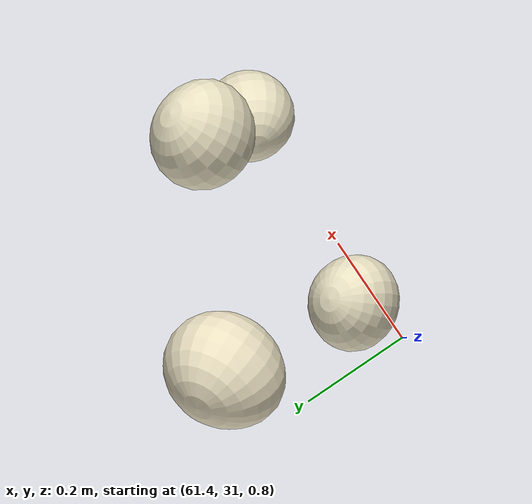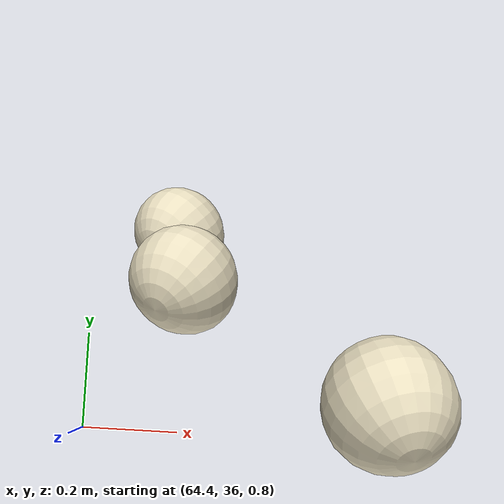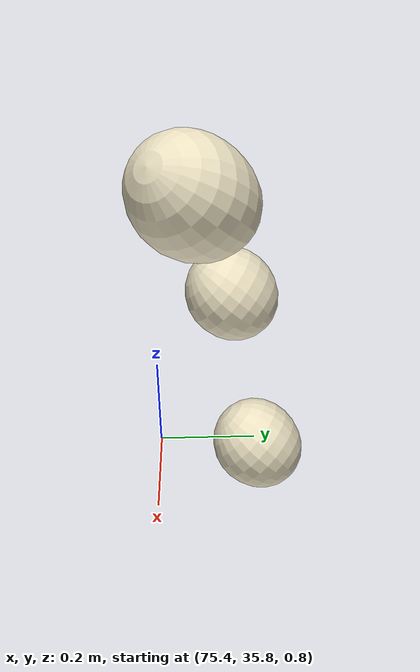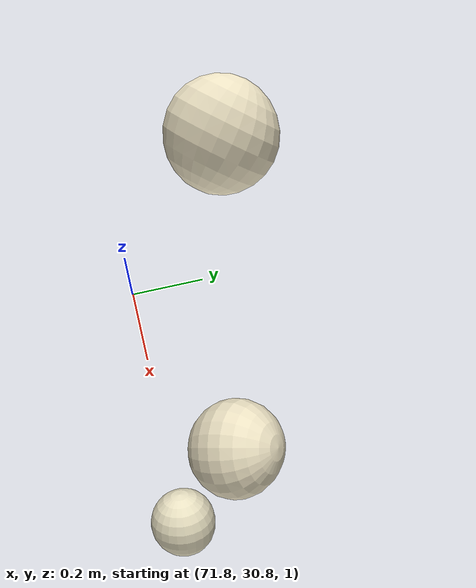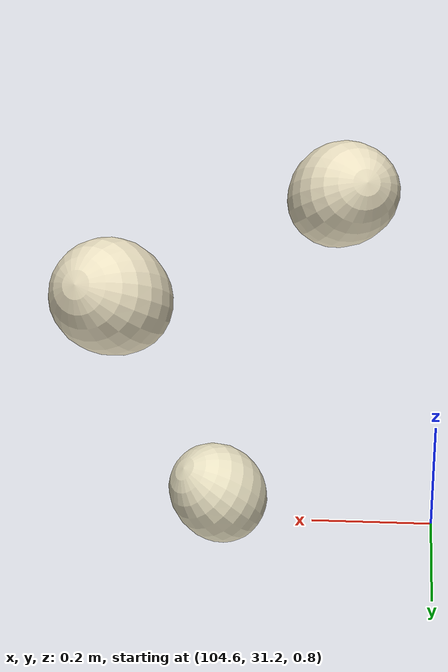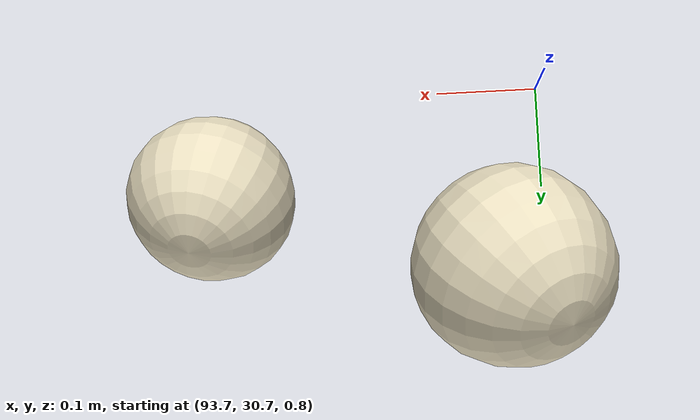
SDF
<sdf version="1.6">
 <world name="orchard">
  <physics name="fast_physics" type="dart">
   <max_step_size>0.005</max_step_size>
   <real_time_factor>1.0</real_time_factor>
  </physics>
  <plugin filename="ignition-gazebo-physics-system" name="ignition::gazebo::systems::Physics"/>
  <plugin filename="ignition-gazebo-user-commands-system" name="ignition::gazebo::systems::UserCommands"/>
  <plugin filename="ignition-gazebo-scene-broadcaster-system" name="ignition::gazebo::systems::SceneBroadcaster"/>
  <plugin filename="ignition-gazebo-sensors-system" name="ignition::gazebo::systems::Sensors">
   <render_engine>ogre2</render_engine>
  </plugin>
  <plugin filename="ignition-gazebo-imu-system" name="ignition::gazebo::systems::Imu"/>
  <scene><ambient>0.4 0.4 0.4 1</ambient><background>0.7 0.85 1.0 1</background><shadows>true</shadows></scene>
  <light type="directional" name="sun">
   <pose>0 0 10 0 0 0</pose>
   <diffuse>0.9 0.9 0.85 1</diffuse>
   <specular>0.2 0.2 0.2 1</specular>
   <direction>-0.4 -0.3 -0.85</direction>
  </light>
  <model name="ground_plane">
   <static>true</static>
   <link name="link">
    <collision name="collision">
     <geometry><plane><normal>0 0 1</normal><size>500 500</size></plane></geometry>
     <surface><friction><ode><mu>100</mu><mu2>50</mu2></ode></friction></surface>
    </collision>
   </link>
  </model>
  <model name="cotton_pick_A_01">
   <static>true</static>
   <pose>61.8682 31.0094 0.9468 0 0 0</pose>
   <link name="cotton_pick_A_01_link">
    <visual name="visual">
     <geometry>
      <mesh><uri>model://cotton_pick_A_01/meshes/cotton_pick_A_01.dae</uri><scale>4.0 4.0 4.0</scale></mesh>
     </geometry>
    </visual>
   </link>
  </model>
  <model name="cotton_pick_A_02">
   <static>true</static>
   <pose>61.5010 31.0447 1.0983 0 0 0</pose>
   <link name="cotton_pick_A_02_link">
    <visual name="visual">
     <geometry>
      <mesh><uri>model://cotton_pick_A_02/meshes/cotton_pick_A_02.dae</uri><scale>4.0 4.0 4.0</scale></mesh>
     </geometry>
    </visual>
   </link>
  </model>
  <model name="cotton_pick_A_03">
   <static>true</static>
   <pose>61.8671 31.1012 1.3447 0 0 0</pose>
   <link name="cotton_pick_A_03_link">
    <visual name="visual">
     <geometry>
      <mesh><uri>model://cotton_pick_A_03/meshes/cotton_pick_A_03.dae</uri><scale>4.0 4.0 4.0</scale></mesh>
     </geometry>
    </visual>
   </link>
  </model>
  <model name="cotton_pick_A_04">
   <static>true</static>
   <pose>61.5315 31.2864 1.6349 0 0 0</pose>
   <link name="cotton_pick_A_04_link">
    <visual name="visual">
     <geometry>
      <mesh><uri>model://cotton_pick_A_04/meshes/cotton_pick_A_04.dae</uri><scale>4.0 4.0 4.0</scale></mesh>
     </geometry>
    </visual>
   </link>
  </model>
  <model name="cotton_pick_A_05">
   <static>true</static>
   <pose>94.0297 30.8042 0.8508 0 0 0</pose>
   <link name="cotton_pick_A_05_link">
    <visual name="visual">
     <geometry>
      <mesh><uri>model://cotton_pick_A_05/meshes/cotton_pick_A_05.dae</uri><scale>4.0 4.0 4.0</scale></mesh>
     </geometry>
    </visual>
   </link>
  </model>
  <model name="cotton_pick_A_06">
   <static>true</static>
   <pose>93.7610 30.9137 1.1155 0 0 0</pose>
   <link name="cotton_pick_A_06_link">
    <visual name="visual">
     <geometry>
      <mesh><uri>model://cotton_pick_A_06/meshes/cotton_pick_A_06.dae</uri><scale>4.0 4.0 4.0</scale></mesh>
     </geometry>
    </visual>
   </link>
  </model>
  <model name="cotton_pick_A_10">
   <static>true</static>
   <pose>64.5852 36.4121 0.9313 0 0 0</pose>
   <link name="cotton_pick_A_10_link">
    <visual name="visual">
     <geometry>
      <mesh><uri>model://cotton_pick_A_10/meshes/cotton_pick_A_10.dae</uri><scale>4.0 4.0 4.0</scale></mesh>
     </geometry>
    </visual>
   </link>
  </model>
  <model name="cotton_pick_A_12">
   <static>true</static>
   <pose>64.6229 36.2755 1.4048 0 0 0</pose>
   <link name="cotton_pick_A_12_link">
    <visual name="visual">
     <geometry>
      <mesh><uri>model://cotton_pick_A_12/meshes/cotton_pick_A_12.dae</uri><scale>4.0 4.0 4.0</scale></mesh>
     </geometry>
    </visual>
   </link>
  </model>
  <model name="cotton_pick_A_13">
   <static>true</static>
   <pose>64.8895 36.1139 1.7274 0 0 0</pose>
   <link name="cotton_pick_A_13_link">
    <visual name="visual">
     <geometry>
      <mesh><uri>model://cotton_pick_A_13/meshes/cotton_pick_A_13.dae</uri><scale>4.0 4.0 4.0</scale></mesh>
     </geometry>
    </visual>
   </link>
  </model>
  <model name="cotton_pick_A_16">
   <static>true</static>
   <pose>97.0977 35.9298 1.4068 0 0 0</pose>
   <link name="cotton_pick_A_16_link">
    <visual name="visual">
     <geometry>
      <mesh><uri>model://cotton_pick_A_16/meshes/cotton_pick_A_16.dae</uri><scale>4.0 4.0 4.0</scale></mesh>
     </geometry>
    </visual>
   </link>
  </model>
  <model name="cotton_pick_A_17">
   <static>true</static>
   <pose>97.4213 35.8617 1.6940 0 0 0</pose>
   <link name="cotton_pick_A_17_link">
    <visual name="visual">
     <geometry>
      <mesh><uri>model://cotton_pick_A_17/meshes/cotton_pick_A_17.dae</uri><scale>4.0 4.0 4.0</scale></mesh>
     </geometry>
    </visual>
   </link>
  </model>
  <model name="cotton_pick_B_01">
   <static>true</static>
   <pose>72.4371 30.7985 1.0064 0 0 0</pose>
   <link name="cotton_pick_B_01_link">
    <visual name="visual">
     <geometry>
      <mesh><uri>model://cotton_pick_B_01/meshes/cotton_pick_B_01.dae</uri><scale>4.0 4.0 4.0</scale></mesh>
     </geometry>
    </visual>
   </link>
  </model>
  <model name="cotton_pick_B_02">
   <static>true</static>
   <pose>72.3833 30.9198 1.4603 0 0 0</pose>
   <link name="cotton_pick_B_02_link">
    <visual name="visual">
     <geometry>
      <mesh><uri>model://cotton_pick_B_02/meshes/cotton_pick_B_02.dae</uri><scale>4.0 4.0 4.0</scale></mesh>
     </geometry>
    </visual>
   </link>
  </model>
  <model name="cotton_pick_B_03">
   <static>true</static>
   <pose>71.9506 30.9907 1.7740 0 0 0</pose>
   <link name="cotton_pick_B_03_link">
    <visual name="visual">
     <geometry>
      <mesh><uri>model://cotton_pick_B_03/meshes/cotton_pick_B_03.dae</uri><scale>4.0 4.0 4.0</scale></mesh>
     </geometry>
    </visual>
   </link>
  </model>
  <model name="cotton_pick_B_04">
   <static>true</static>
   <pose>104.9553 31.2475 0.8917 0 0 0</pose>
   <link name="cotton_pick_B_04_link">
    <visual name="visual">
     <geometry>
      <mesh><uri>model://cotton_pick_B_04/meshes/cotton_pick_B_04.dae</uri><scale>4.0 4.0 4.0</scale></mesh>
     </geometry>
    </visual>
   </link>
  </model>
  <model name="cotton_pick_B_05">
   <static>true</static>
   <pose>105.0984 31.4466 1.4106 0 0 0</pose>
   <link name="cotton_pick_B_05_link">
    <visual name="visual">
     <geometry>
      <mesh><uri>model://cotton_pick_B_05/meshes/cotton_pick_B_05.dae</uri><scale>4.0 4.0 4.0</scale></mesh>
     </geometry>
    </visual>
   </link>
  </model>
  <model name="cotton_pick_B_06">
   <static>true</static>
   <pose>104.7589 31.4303 1.5895 0 0 0</pose>
   <link name="cotton_pick_B_06_link">
    <visual name="visual">
     <geometry>
      <mesh><uri>model://cotton_pick_B_06/meshes/cotton_pick_B_06.dae</uri><scale>4.0 4.0 4.0</scale></mesh>
     </geometry>
    </visual>
   </link>
  </model>
  <model name="cotton_pick_B_07">
   <static>true</static>
   <pose>75.4918 36.0031 0.8649 0 0 0</pose>
   <link name="cotton_pick_B_07_link">
    <visual name="visual">
     <geometry>
      <mesh><uri>model://cotton_pick_B_07/meshes/cotton_pick_B_07.dae</uri><scale>4.0 4.0 4.0</scale></mesh>
     </geometry>
    </visual>
   </link>
  </model>
  <model name="cotton_pick_B_08">
   <static>true</static>
   <pose>75.5613 35.9482 1.2741 0 0 0</pose>
   <link name="cotton_pick_B_08_link">
    <visual name="visual">
     <geometry>
      <mesh><uri>model://cotton_pick_B_08/meshes/cotton_pick_B_08.dae</uri><scale>4.0 4.0 4.0</scale></mesh>
     </geometry>
    </visual>
   </link>
  </model>
  <model name="cotton_pick_B_09">
   <static>true</static>
   <pose>75.8341 35.8921 1.5933 0 0 0</pose>
   <link name="cotton_pick_B_09_link">
    <visual name="visual">
     <geometry>
      <mesh><uri>model://cotton_pick_B_09/meshes/cotton_pick_B_09.dae</uri><scale>4.0 4.0 4.0</scale></mesh>
     </geometry>
    </visual>
   </link>
  </model>
  <model name="cotton_pick_B_10">
   <static>true</static>
   <pose>107.7098 36.5990 1.0211 0 0 0</pose>
   <link name="cotton_pick_B_10_link">
    <visual name="visual">
     <geometry>
      <mesh><uri>model://cotton_pick_B_10/meshes/cotton_pick_B_10.dae</uri><scale>4.0 4.0 4.0</scale></mesh>
     </geometry>
    </visual>
   </link>
  </model>
  <model name="cotton_pick_B_12">
   <static>true</static>
   <pose>108.0929 36.2258 1.8629 0 0 0</pose>
   <link name="cotton_pick_B_12_link">
    <visual name="visual">
     <geometry>
      <mesh><uri>model://cotton_pick_B_12/meshes/cotton_pick_B_12.dae</uri><scale>4.0 4.0 4.0</scale></mesh>
     </geometry>
    </visual>
   </link>
  </model>
  <model name="cotton_pick_C_01">
   <static>true</static>
   <pose>83.4832 31.1475 0.9286 0 0 0</pose>
   <link name="cotton_pick_C_01_link">
    <visual name="visual">
     <geometry>
      <mesh><uri>model://cotton_pick_C_01/meshes/cotton_pick_C_01.dae</uri><scale>4.0 4.0 4.0</scale></mesh>
     </geometry>
    </visual>
   </link>
  </model>
 </world>
</sdf>
